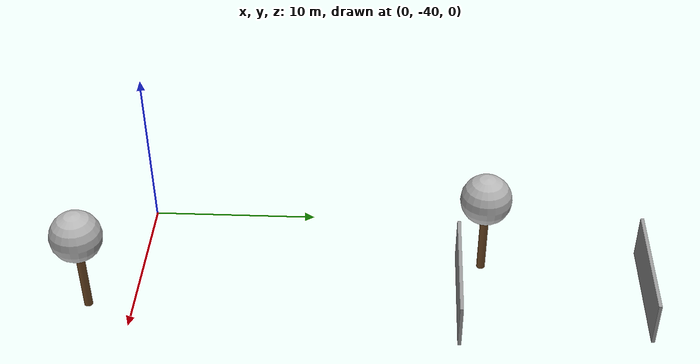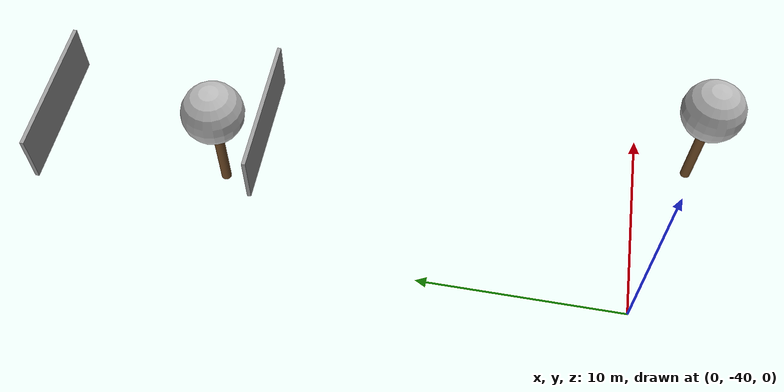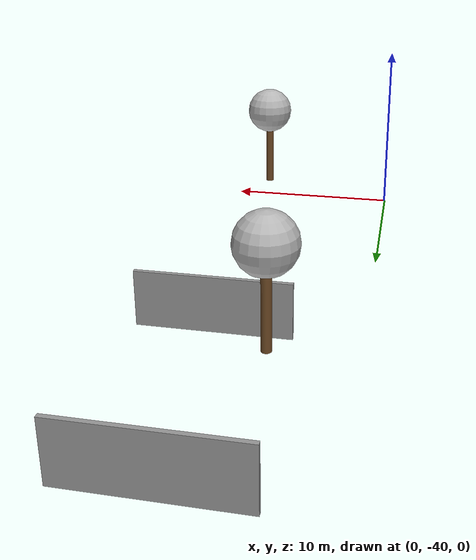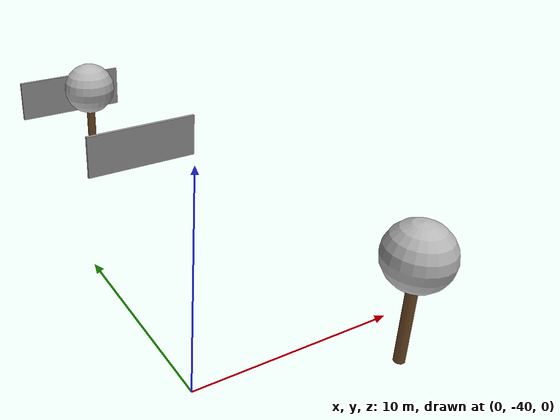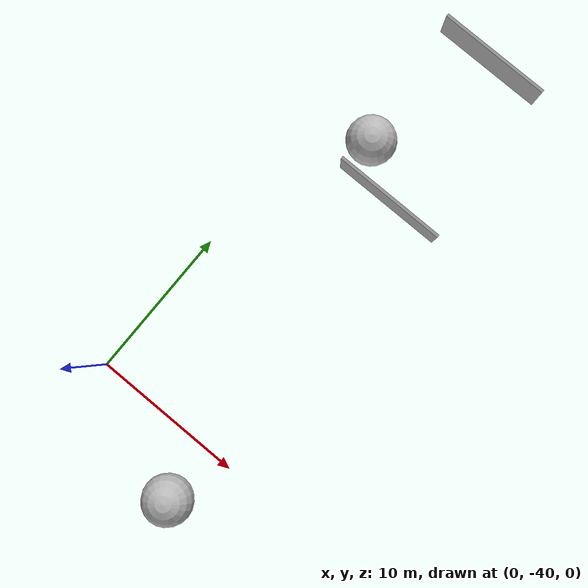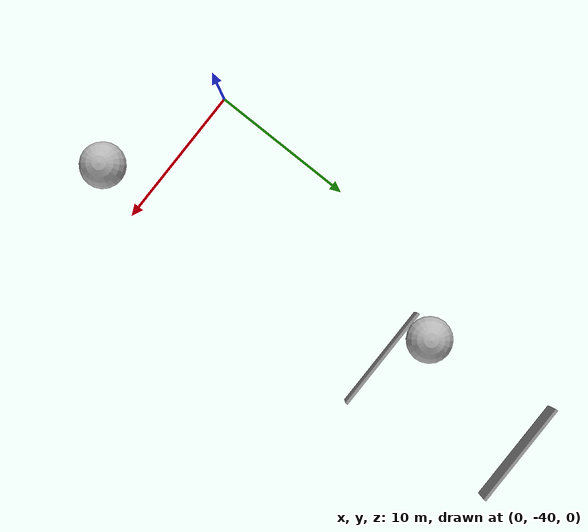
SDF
<sdf version="1.7">
 <world name="default">
  <model name="tree_simple_1">
   <static>1</static>
   <link name="link">
    <pose>0 0 0.1 0 -0 0</pose>
    <inertial>
     <mass>666</mass>
     <inertia>
      <ixx>0.0861167</ixx>
      <ixy>0</ixy>
      <ixz>0</ixz>
      <iyy>0.0861167</iyy>
      <iyz>0</iyz>
      <izz>0.0861167</izz>
     </inertia>
    </inertial>
    <collision name="collision_trunk">
     <pose>0 0 2 0 -0 0</pose>
     <geometry><cylinder><radius>0.25</radius><length>4</length></cylinder></geometry>
     <surface>
      <contact>
       <poissons_ratio>0.347</poissons_ratio>
       <elastic_modulus>8.8e+09</elastic_modulus>
       <ode><kp>100000</kp><kd>100</kd><max_vel>100</max_vel><min_depth>0.001</min_depth></ode>
      </contact>
      <friction>
       <torsional>
        <coefficient>1</coefficient>
        <use_patch_radius>0</use_patch_radius>
        <surface_radius>0.01</surface_radius>
       </torsional>
      </friction>
     </surface>
    </collision>
    <collision name="collision_treetop">
     <pose>0 0 5.2 0 -0 0</pose>
     <geometry><sphere><radius>1.5</radius></sphere></geometry>
     <surface>
      <contact>
       <poissons_ratio>0.347</poissons_ratio>
       <elastic_modulus>8.8e+09</elastic_modulus>
       <ode><kp>100000</kp><kd>100</kd><max_vel>100</max_vel><min_depth>0.001</min_depth></ode>
      </contact>
      <friction>
       <torsional>
        <coefficient>1</coefficient>
        <use_patch_radius>0</use_patch_radius>
        <surface_radius>0.01</surface_radius>
       </torsional>
      </friction>
     </surface>
    </collision>
    <visual name="trunk">
     <pose>0 0 2 0 -0 0</pose>
     <geometry><cylinder><radius>0.25</radius><length>4</length></cylinder></geometry>
     <material>
      <script>
       <uri>model://tree_simple/scripts</uri>
       <uri>model://tree_simple/materials/textures</uri>
       <name>TreeSimple/Trunk</name>
      </script>
     </material>
    </visual>
    <visual name="treetop">
     <pose>0 0 5.2 0 -0 0</pose>
     <geometry><sphere><radius>1.5</radius></sphere></geometry>
     <material>
      <script>
       <uri>model://tree_simple/scripts</uri>
       <uri>model://tree_simple/materials/textures</uri>
       <name>TreeSimple/Treetop</name>
      </script>
     </material>
    </visual>
   </link>
   <pose>8.4231 -42.587 0 0 -0 0</pose>
  </model>
  <model name="grey_wall_clone">
   <static>1</static>
   <link name="link">
    <pose>0 0 1.4 0 -0 0</pose>
    <collision name="collision"><geometry><box><size>7.5 0.2 2.8</size></box></geometry></collision>
    <visual name="visual">
     <cast_shadows>0</cast_shadows>
     <geometry><box><size>7.5 0.2 2.8</size></box></geometry>
     <material>
      <script>
       <uri>model://grey_wall/materials/scripts</uri>
       <uri>model://grey_wall/materials/textures</uri>
       <name>vrc/grey_wall</name>
      </script>
     </material>
    </visual>
   </link>
   <pose>6.28908 -10.136 0 0 -0 0</pose>
  </model>
  <model name="grey_wall_clone_1">
   <static>1</static>
   <link name="link">
    <pose>0 0 1.4 0 -0 0</pose>
    <collision name="collision"><geometry><box><size>7.5 0.2 2.8</size></box></geometry></collision>
    <visual name="visual">
     <cast_shadows>0</cast_shadows>
     <geometry><box><size>7.5 0.2 2.8</size></box></geometry>
     <material>
      <script>
       <uri>model://grey_wall/materials/scripts</uri>
       <uri>model://grey_wall/materials/textures</uri>
       <name>vrc/grey_wall</name>
      </script>
     </material>
    </visual>
   </link>
   <pose>6.98271 -21.0654 0 0 -0 0</pose>
  </model>
  <model name="tree_simple_3_clone_0">
   <static>1</static>
   <link name="link">
    <pose>0 0 0.1 0 -0 0</pose>
    <inertial>
     <mass>666</mass>
     <inertia>
      <ixx>0.0861167</ixx>
      <ixy>0</ixy>
      <ixz>0</ixz>
      <iyy>0.0861167</iyy>
      <iyz>0</iyz>
      <izz>0.0861167</izz>
     </inertia>
    </inertial>
    <collision name="collision_trunk">
     <pose>0 0 2 0 -0 0</pose>
     <geometry><cylinder><radius>0.25</radius><length>4</length></cylinder></geometry>
     <surface>
      <contact>
       <poissons_ratio>0.347</poissons_ratio>
       <elastic_modulus>8.8e+09</elastic_modulus>
       <ode><kp>100000</kp><kd>100</kd><max_vel>100</max_vel><min_depth>0.001</min_depth></ode>
      </contact>
      <friction>
       <torsional>
        <coefficient>1</coefficient>
        <use_patch_radius>0</use_patch_radius>
        <surface_radius>0.01</surface_radius>
       </torsional>
      </friction>
     </surface>
    </collision>
    <collision name="collision_treetop">
     <pose>0 0 5.2 0 -0 0</pose>
     <geometry><sphere><radius>1.5</radius></sphere></geometry>
     <surface>
      <contact>
       <poissons_ratio>0.347</poissons_ratio>
       <elastic_modulus>8.8e+09</elastic_modulus>
       <ode><kp>100000</kp><kd>100</kd><max_vel>100</max_vel><min_depth>0.001</min_depth></ode>
      </contact>
      <friction>
       <torsional>
        <coefficient>1</coefficient>
        <use_patch_radius>0</use_patch_radius>
        <surface_radius>0.01</surface_radius>
       </torsional>
      </friction>
     </surface>
    </collision>
    <visual name="trunk">
     <pose>0 0 2 0 -0 0</pose>
     <geometry><cylinder><radius>0.25</radius><length>4</length></cylinder></geometry>
     <material>
      <script>
       <uri>model://tree_simple/scripts</uri>
       <uri>model://tree_simple/materials/textures</uri>
       <name>TreeSimple/Trunk</name>
      </script>
     </material>
    </visual>
    <visual name="treetop">
     <pose>0 0 5.2 0 -0 0</pose>
     <geometry><sphere><radius>1.5</radius></sphere></geometry>
     <material>
      <script>
       <uri>model://tree_simple/scripts</uri>
       <uri>model://tree_simple/materials/textures</uri>
       <name>TreeSimple/Treetop</name>
      </script>
     </material>
    </visual>
   </link>
   <pose>4.1994 -19.6605 0 0 -0 0</pose>
  </model>
 </world>
</sdf>
